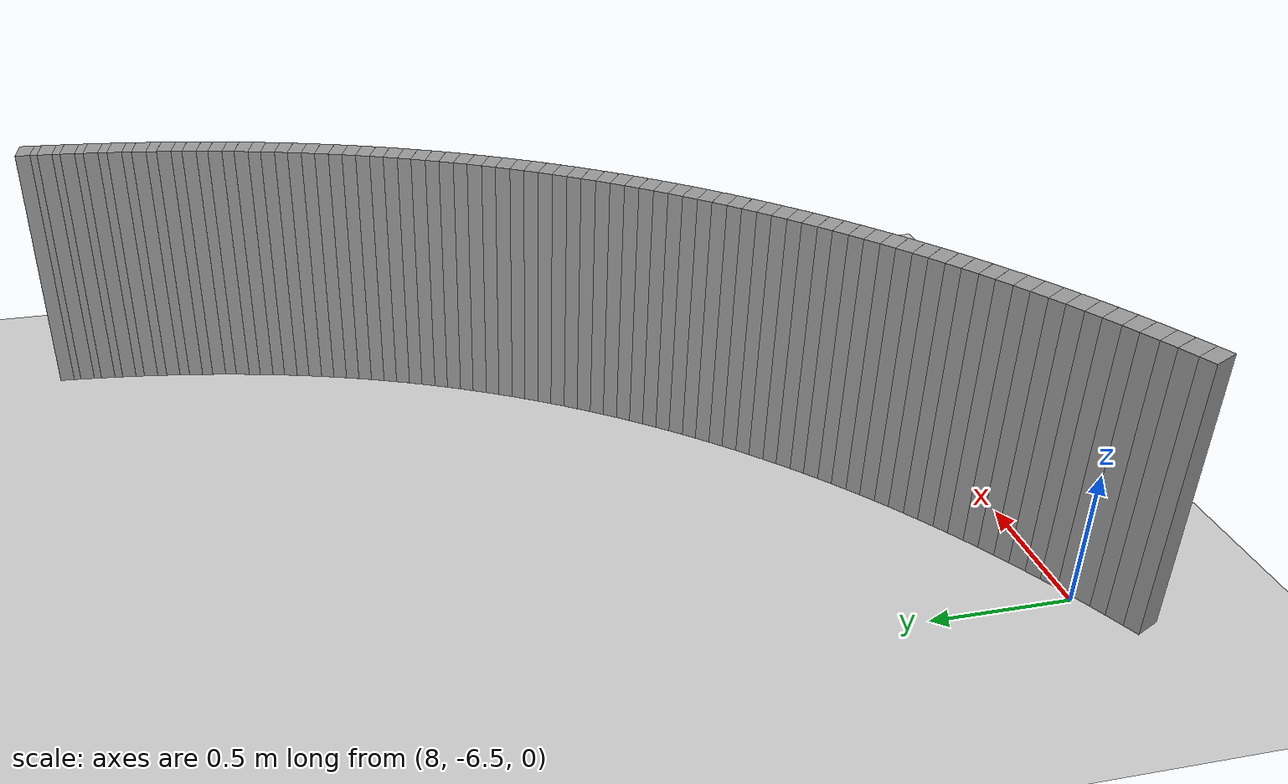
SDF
<sdf version="1.6">
 <world name="default">
  <include><uri>model://ground_plane</uri></include>
  <include><uri>model://sun</uri></include>
  <model name="wall_506_outward">
   <static>true</static>
   <link name="link">
    <collision name="collision">
     <geometry><box><size>0.05527079873616427 0.1 1.0</size></box></geometry>
    </collision>
    <visual name="visual">
     <geometry><box><size>0.05527079873616427 0.1 1.0</size></box></geometry>
     <material>
      <script><uri>file://media/materials/scripts/gazebo.material</uri><name>Gazebo/Gray</name></script>
     </material>
    </visual>
   </link>
   <pose>10.201085446480485 -3.150995703800944 0.5 0 0 -1.6459002783674306</pose>
  </model>
  <model name="wall_507_outward">
   <static>true</static>
   <link name="link">
    <collision name="collision">
     <geometry><box><size>0.026887933569008527 0.1 1.0</size></box></geometry>
    </collision>
    <visual name="visual">
     <geometry><box><size>0.026887933569008527 0.1 1.0</size></box></geometry>
     <material>
      <script><uri>file://media/materials/scripts/gazebo.material</uri><name>Gazebo/Gray</name></script>
     </material>
    </visual>
   </link>
   <pose>10.197913030776308 -3.1919521845375796 0.5 0 0 -1.6526223123829276</pose>
  </model>
  <model name="wall_508_outward">
   <static>true</static>
   <link name="link">
    <collision name="collision">
     <geometry><box><size>0.05551601900319563 0.1 1.0</size></box></geometry>
    </collision>
    <visual name="visual">
     <geometry><box><size>0.05551601900319563 0.1 1.0</size></box></geometry>
     <material>
      <script><uri>file://media/materials/scripts/gazebo.material</uri><name>Gazebo/Gray</name></script>
     </material>
    </visual>
   </link>
   <pose>10.194359486070763 -3.2330004281986193 0.5 0 0 -1.659344346398403</pose>
  </model>
  <model name="wall_509_outward">
   <static>true</static>
   <link name="link">
    <collision name="collision">
     <geometry><box><size>0.029658096209920826 0.1 1.0</size></box></geometry>
    </collision>
    <visual name="visual">
     <geometry><box><size>0.029658096209920826 0.1 1.0</size></box></geometry>
     <material>
      <script><uri>file://media/materials/scripts/gazebo.material</uri><name>Gazebo/Gray</name></script>
     </material>
    </visual>
   </link>
   <pose>10.19048392891742 -3.2754105084022593 0.5 0 0 -1.6667589383883534</pose>
  </model>
  <model name="wall_510_outward">
   <static>true</static>
   <link name="link">
    <collision name="collision">
     <geometry><box><size>0.055665710359898056 0.1 1.0</size></box></geometry>
    </collision>
    <visual name="visual">
     <geometry><box><size>0.055665710359898056 0.1 1.0</size></box></geometry>
     <material>
      <script><uri>file://media/materials/scripts/gazebo.material</uri><name>Gazebo/Gray</name></script>
     </material>
    </visual>
   </link>
   <pose>10.186190917179067 -3.3178555947095316 0.5 0 0 -1.6741735303782905</pose>
  </model>
  <model name="wall_511_outward">
   <static>true</static>
   <link name="link">
    <collision name="collision">
     <geometry><box><size>0.03243474608291261 0.1 1.0</size></box></geometry>
    </collision>
    <visual name="visual">
     <geometry><box><size>0.03243474608291261 0.1 1.0</size></box></geometry>
     <material>
      <script><uri>file://media/materials/scripts/gazebo.material</uri><name>Gazebo/Gray</name></script>
     </material>
    </visual>
   </link>
   <pose>10.181514489844137 -3.361656553088691 0.5 0 0 -1.6822823057604235</pose>
  </model>
  <model name="wall_512_outward">
   <static>true</static>
   <link name="link">
    <collision name="collision">
     <geometry><box><size>0.055723122416963776 0.1 1.0</size></box></geometry>
    </collision>
    <visual name="visual">
     <geometry><box><size>0.055723122416963776 0.1 1.0</size></box></geometry>
     <material>
      <script><uri>file://media/materials/scripts/gazebo.material</uri><name>Gazebo/Gray</name></script>
     </material>
    </visual>
   </link>
   <pose>10.17638606400007 -3.405435794557179 0.5 0 0 -1.6903910811425393</pose>
  </model>
  <model name="wall_513_outward">
   <static>true</static>
   <link name="link">
    <collision name="collision">
     <geometry><box><size>0.03517502913729756 0.1 1.0</size></box></geometry>
    </collision>
    <visual name="visual">
     <geometry><box><size>0.03517502913729756 0.1 1.0</size></box></geometry>
     <material>
      <script><uri>file://media/materials/scripts/gazebo.material</uri><name>Gazebo/Gray</name></script>
     </material>
    </visual>
   </link>
   <pose>10.170810066384345 -3.450541102957221 0.5 0 0 -1.6991849517679</pose>
  </model>
  <model name="wall_514_outward">
   <static>true</static>
   <link name="link">
    <collision name="collision">
     <geometry><box><size>0.055696696315166494 0.1 1.0</size></box></geometry>
    </collision>
    <visual name="visual">
     <geometry><box><size>0.055696696315166494 0.1 1.0</size></box></geometry>
     <material>
      <script><uri>file://media/materials/scripts/gazebo.material</uri><name>Gazebo/Gray</name></script>
     </material>
    </visual>
   </link>
   <pose>10.164749893150073 -3.495570582704342 0.5 0 0 -1.7079788223933168</pose>
  </model>
  <model name="wall_515_outward">
   <static>true</static>
   <link name="link">
    <collision name="collision">
     <geometry><box><size>0.037876962975831534 0.1 1.0</size></box></geometry>
    </collision>
    <visual name="visual">
     <geometry><box><size>0.037876962975831534 0.1 1.0</size></box></geometry>
     <material>
      <script><uri>file://media/materials/scripts/gazebo.material</uri><name>Gazebo/Gray</name></script>
     </material>
    </visual>
   </link>
   <pose>10.158174139176705 -3.5418924954054516 0.5 0 0 -1.717448204655291</pose>
  </model>
  <model name="wall_516_outward">
   <static>true</static>
   <link name="link">
    <collision name="collision">
     <geometry><box><size>0.055601988441618753 0.1 1.0</size></box></geometry>
    </collision>
    <visual name="visual">
     <geometry><box><size>0.055601988441618753 0.1 1.0</size></box></geometry>
     <material>
      <script><uri>file://media/materials/scripts/gazebo.material</uri><name>Gazebo/Gray</name></script>
     </material>
    </visual>
   </link>
   <pose>10.151084003974976 -3.588090562043505 0.5 0 0 -1.7269175869172755</pose>
  </model>
  <model name="wall_517_outward">
   <static>true</static>
   <link name="link">
    <collision name="collision">
     <geometry><box><size>0.04047739348557297 0.1 1.0</size></box></geometry>
    </collision>
    <visual name="visual">
     <geometry><box><size>0.04047739348557297 0.1 1.0</size></box></geometry>
     <material>
      <script><uri>file://media/materials/scripts/gazebo.material</uri><name>Gazebo/Gray</name></script>
     </material>
    </visual>
   </link>
   <pose>10.143412266705255 -3.6355131171942157 0.5 0 0 -1.7370371080022287</pose>
  </model>
  <model name="wall_518_outward">
   <static>true</static>
   <link name="link">
    <collision name="collision">
     <geometry><box><size>0.055454371000564356 0.1 1.0</size></box></geometry>
    </collision>
    <visual name="visual">
     <geometry><box><size>0.055454371000564356 0.1 1.0</size></box></geometry>
     <material>
      <script><uri>file://media/materials/scripts/gazebo.material</uri><name>Gazebo/Gray</name></script>
     </material>
    </visual>
   </link>
   <pose>10.135198579989513 -3.682769902365677 0.5 0 0 -1.7471566290871572</pose>
  </model>
  <model name="wall_519_outward">
   <static>true</static>
   <link name="link">
    <collision name="collision">
     <geometry><box><size>0.04297648535518742 0.1 1.0</size></box></geometry>
    </collision>
    <visual name="visual">
     <geometry><box><size>0.04297648535518742 0.1 1.0</size></box></geometry>
     <material>
      <script><uri>file://media/materials/scripts/gazebo.material</uri><name>Gazebo/Gray</name></script>
     </material>
    </visual>
   </link>
   <pose>10.126336782491684 -3.7311802125900475 0.5 0 0 -1.7579009571466717</pose>
  </model>
  <model name="wall_520_outward">
   <static>true</static>
   <link name="link">
    <collision name="collision">
     <geometry><box><size>0.05527455048617462 0.1 1.0</size></box></geometry>
    </collision>
    <visual name="visual">
     <geometry><box><size>0.05527455048617462 0.1 1.0</size></box></geometry>
     <material>
      <script><uri>file://media/materials/scripts/gazebo.material</uri><name>Gazebo/Gray</name></script>
     </material>
    </visual>
   </link>
   <pose>10.116907248011547 -3.779391537335115 0.5 0 0 -1.7686452852062364</pose>
  </model>
  <model name="wall_521_outward">
   <static>true</static>
   <link name="link">
    <collision name="collision">
     <geometry><box><size>0.045340806498346306 0.1 1.0</size></box></geometry>
    </collision>
    <visual name="visual">
     <geometry><box><size>0.045340806498346306 0.1 1.0</size></box></geometry>
     <material>
      <script><uri>file://media/materials/scripts/gazebo.material</uri><name>Gazebo/Gray</name></script>
     </material>
    </visual>
   </link>
   <pose>10.106767060889704 -3.8286658573675743 0.5 0 0 -1.779980729582098</pose>
  </model>
  <model name="wall_522_outward">
   <static>true</static>
   <link name="link">
    <collision name="collision">
     <geometry><box><size>0.05508164568797529 0.1 1.0</size></box></geometry>
    </collision>
    <visual name="visual">
     <geometry><box><size>0.05508164568797529 0.1 1.0</size></box></geometry>
     <material>
      <script><uri>file://media/materials/scripts/gazebo.material</uri><name>Gazebo/Gray</name></script>
     </material>
    </visual>
   </link>
   <pose>10.096035081662045 -3.8777159503628207 0.5 0 0 -1.791316173958029</pose>
  </model>
  <model name="wall_523_outward">
   <static>true</static>
   <link name="link">
    <collision name="collision">
     <geometry><box><size>0.04750928040422077 0.1 1.0</size></box></geometry>
    </collision>
    <visual name="visual">
     <geometry><box><size>0.04750928040422077 0.1 1.0</size></box></geometry>
     <material>
      <script><uri>file://media/materials/scripts/gazebo.material</uri><name>Gazebo/Gray</name></script>
     </material>
    </visual>
   </link>
   <pose>10.08453992794665 -3.927705886102861 0.5 0 0 -1.8031937733338654</pose>
  </model>
  <model name="wall_524_outward">
   <static>true</static>
   <link name="link">
    <collision name="collision">
     <geometry><box><size>0.05489461279334247 0.1 1.0</size></box></geometry>
    </collision>
    <visual name="visual">
     <geometry><box><size>0.05489461279334247 0.1 1.0</size></box></geometry>
     <material>
      <script><uri>file://media/materials/scripts/gazebo.material</uri><name>Gazebo/Gray</name></script>
     </material>
    </visual>
   </link>
   <pose>10.072430756560195 -3.977454406908517 0.5 0 0 -1.8150713727096794</pose>
  </model>
  <model name="wall_525_outward">
   <static>true</static>
   <link name="link">
    <collision name="collision">
     <geometry><box><size>0.049496896780268286 0.1 1.0</size></box></geometry>
    </collision>
    <visual name="visual">
     <geometry><box><size>0.049496896780268286 0.1 1.0</size></box></geometry>
     <material>
      <script><uri>file://media/materials/scripts/gazebo.material</uri><name>Gazebo/Gray</name></script>
     </material>
    </visual>
   </link>
   <pose>10.05951036584947 -4.028024717423799 0.5 0 0 -1.827445912719646</pose>
  </model>
  <model name="wall_526_outward">
   <static>true</static>
   <link name="link">
    <collision name="collision">
     <geometry><box><size>0.05473016714266876 0.1 1.0</size></box></geometry>
    </collision>
    <visual name="visual">
     <geometry><box><size>0.05473016714266876 0.1 1.0</size></box></geometry>
     <material>
      <script><uri>file://media/materials/scripts/gazebo.material</uri><name>Gazebo/Gray</name></script>
     </material>
    </visual>
   </link>
   <pose>10.045954800124676 -4.078343333729715 0.5 0 0 -1.8398204527296171</pose>
  </model>
  <model name="wall_527_outward">
   <static>true</static>
   <link name="link">
    <collision name="collision">
     <geometry><box><size>0.05128243671680484 0.1 1.0</size></box></geometry>
    </collision>
    <visual name="visual">
     <geometry><box><size>0.05128243671680484 0.1 1.0</size></box></geometry>
     <material>
      <script><uri>file://media/materials/scripts/gazebo.material</uri><name>Gazebo/Gray</name></script>
     </material>
    </visual>
   </link>
   <pose>10.03154986169515 -4.129353631274317 0.5 0 0 -1.8526414131511573</pose>
  </model>
  <model name="wall_528_outward">
   <static>true</static>
   <link name="link">
    <collision name="collision">
     <geometry><box><size>0.05460191090464128 0.1 1.0</size></box></geometry>
    </collision>
    <visual name="visual">
     <geometry><box><size>0.05460191090464128 0.1 1.0</size></box></geometry>
     <material>
      <script><uri>file://media/materials/scripts/gazebo.material</uri><name>Gazebo/Gray</name></script>
     </material>
    </visual>
   </link>
   <pose>10.016489558611289 -4.1801074091789525 0.5 0 0 -1.8654623735726945</pose>
  </model>
  <model name="wall_529_outward">
   <static>true</static>
   <link name="link">
    <collision name="collision">
     <geometry><box><size>0.05286049613451886 0.1 1.0</size></box></geometry>
    </collision>
    <visual name="visual">
     <geometry><box><size>0.05286049613451886 0.1 1.0</size></box></geometry>
     <material>
      <script><uri>file://media/materials/scripts/gazebo.material</uri><name>Gazebo/Gray</name></script>
     </material>
    </visual>
   </link>
   <pose>10.000551371492154 -4.231419107676569 0.5 0 0 -1.8786778822836623</pose>
  </model>
  <model name="wall_530_outward">
   <static>true</static>
   <link name="link">
    <collision name="collision">
     <geometry><box><size>0.05452002000183561 0.1 1.0</size></box></geometry>
    </collision>
    <visual name="visual">
     <geometry><box><size>0.05452002000183561 0.1 1.0</size></box></geometry>
     <material>
      <script><uri>file://media/materials/scripts/gazebo.material</uri><name>Gazebo/Gray</name></script>
     </material>
    </visual>
   </link>
   <pose>9.983938465991475 -4.282473288219872 0.5 0 0 -1.8918933909946523</pose>
  </model>
  <model name="wall_531_outward">
   <static>true</static>
   <link name="link">
    <collision name="collision">
     <geometry><box><size>0.05424265256249421 0.1 1.0</size></box></geometry>
    </collision>
    <visual name="visual">
     <geometry><box><size>0.05424265256249421 0.1 1.0</size></box></geometry>
     <material>
      <script><uri>file://media/materials/scripts/gazebo.material</uri><name>Gazebo/Gray</name></script>
     </material>
    </visual>
   </link>
   <pose>9.966427096555424 -4.333956739094191 0.5 0 0 -1.9054544697849898</pose>
  </model>
  <model name="wall_532_outward">
   <static>true</static>
   <link name="link">
    <collision name="collision">
     <geometry><box><size>0.054491712413298705 0.1 1.0</size></box></geometry>
    </collision>
    <visual name="visual">
     <geometry><box><size>0.054491712413298705 0.1 1.0</size></box></geometry>
     <material>
      <script><uri>file://media/materials/scripts/gazebo.material</uri><name>Gazebo/Gray</name></script>
     </material>
    </visual>
   </link>
   <pose>9.948222245054424 -4.385184056237614 0.5 0 0 -1.9190155485752707</pose>
  </model>
  <model name="wall_533_outward">
   <static>true</static>
   <link name="link">
    <collision name="collision">
     <geometry><box><size>0.055374739986079086 0.1 1.0</size></box></geometry>
    </collision>
    <visual name="visual">
     <geometry><box><size>0.055374739986079086 0.1 1.0</size></box></geometry>
     <material>
      <script><uri>file://media/materials/scripts/gazebo.material</uri><name>Gazebo/Gray</name></script>
     </material>
    </visual>
   </link>
   <pose>9.929118299939713 -4.436687008020684 0.5 0 0 -1.9328596757948417</pose>
  </model>
  <model name="wall_534_outward">
   <static>true</static>
   <link name="link">
    <collision name="collision">
     <geometry><box><size>0.054520546661288055 0.1 1.0</size></box></geometry>
    </collision>
    <visual name="visual">
     <geometry><box><size>0.054520546661288055 0.1 1.0</size></box></geometry>
     <material>
      <script><uri>file://media/materials/scripts/gazebo.material</uri><name>Gazebo/Gray</name></script>
     </material>
    </visual>
   </link>
   <pose>9.909303603042918 -4.487936170334031 0.5 0 0 -1.9467038030143529</pose>
  </model>
  <model name="wall_535_outward">
   <static>true</static>
   <link name="link">
    <collision name="collision">
     <geometry><box><size>0.05635254612016665 0.1 1.0</size></box></geometry>
    </collision>
    <visual name="visual">
     <geometry><box><size>0.05635254612016665 0.1 1.0</size></box></geometry>
     <material>
      <script><uri>file://media/materials/scripts/gazebo.material</uri><name>Gazebo/Gray</name></script>
     </material>
    </visual>
   </link>
   <pose>9.888583708546333 -4.5393535233631725 0.5 0 0 -1.960792405611227</pose>
  </model>
  <model name="wall_536_outward">
   <static>true</static>
   <link name="link">
    <collision name="collision">
     <geometry><box><size>0.05460875804562967 0.1 1.0</size></box></geometry>
    </collision>
    <visual name="visual">
     <geometry><box><size>0.05460875804562967 0.1 1.0</size></box></geometry>
     <material>
      <script><uri>file://media/materials/scripts/gazebo.material</uri><name>Gazebo/Gray</name></script>
     </material>
    </visual>
   </link>
   <pose>9.867136055459973 -4.590519412691004 0.5 0 0 -1.9748810082080988</pose>
  </model>
  <model name="wall_537_outward">
   <static>true</static>
   <link name="link">
    <collision name="collision">
     <geometry><box><size>0.057084450772499434 0.1 1.0</size></box></geometry>
    </collision>
    <visual name="visual">
     <geometry><box><size>0.057084450772499434 0.1 1.0</size></box></geometry>
     <material>
      <script><uri>file://media/materials/scripts/gazebo.material</uri><name>Gazebo/Gray</name></script>
     </material>
    </visual>
   </link>
   <pose>9.844805055727154 -4.641705455176782 0.5 0 0 -1.9891526053658424</pose>
  </model>
  <model name="wall_538_outward">
   <static>true</static>
   <link name="link">
    <collision name="collision">
     <geometry><box><size>0.05475348034628358 0.1 1.0</size></box></geometry>
    </collision>
    <visual name="visual">
     <geometry><box><size>0.05475348034628358 0.1 1.0</size></box></geometry>
     <material>
      <script><uri>file://media/materials/scripts/gazebo.material</uri><name>Gazebo/Gray</name></script>
     </material>
    </visual>
   </link>
   <pose>9.821731601083467 -4.692640583033484 0.5 0 0 -2.003424202523561</pose>
  </model>
  <model name="wall_539_outward">
   <static>true</static>
   <link name="link">
    <collision name="collision">
     <geometry><box><size>0.05763560335712059 0.1 1.0</size></box></geometry>
    </collision>
    <visual name="visual">
     <geometry><box><size>0.05763560335712059 0.1 1.0</size></box></geometry>
     <material>
      <script><uri>file://media/materials/scripts/gazebo.material</uri><name>Gazebo/Gray</name></script>
     </material>
    </visual>
   </link>
   <pose>9.797795867366155 -4.743480954594464 0.5 0 0 -2.017833601996865</pose>
  </model>
  <model name="wall_540_outward">
   <static>true</static>
   <link name="link">
    <collision name="collision">
     <geometry><box><size>0.054952361894302096 0.1 1.0</size></box></geometry>
    </collision>
    <visual name="visual">
     <geometry><box><size>0.054952361894302096 0.1 1.0</size></box></geometry>
     <material>
      <script><uri>file://media/materials/scripts/gazebo.material</uri><name>Gazebo/Gray</name></script>
     </material>
    </visual>
   </link>
   <pose>9.773104448218046 -4.794069311955107 0.5 0 0 -2.0322430014701265</pose>
  </model>
  <model name="wall_541_outward">
   <static>true</static>
   <link name="link">
    <collision name="collision">
     <geometry><box><size>0.05796822305819037 0.1 1.0</size></box></geometry>
    </collision>
    <visual name="visual">
     <geometry><box><size>0.05796822305819037 0.1 1.0</size></box></geometry>
     <material>
      <script><uri>file://media/materials/scripts/gazebo.material</uri><name>Gazebo/Gray</name></script>
     </material>
    </visual>
   </link>
   <pose>9.747591093300763 -4.844434638169152 0.5 0 0 -2.0467355645521224</pose>
  </model>
  <model name="wall_542_outward">
   <static>true</static>
   <link name="link">
    <collision name="collision">
     <geometry><box><size>0.05520078256641861 0.1 1.0</size></box></geometry>
    </collision>
    <visual name="visual">
     <geometry><box><size>0.05520078256641861 0.1 1.0</size></box></geometry>
     <material>
      <script><uri>file://media/materials/scripts/gazebo.material</uri><name>Gazebo/Gray</name></script>
     </material>
    </visual>
   </link>
   <pose>9.721311368420348 -4.894544657126117 0.5 0 0 -2.0612281276341</pose>
  </model>
  <model name="wall_543_outward">
   <static>true</static>
   <link name="link">
    <collision name="collision">
     <geometry><box><size>0.05812875154147817 0.1 1.0</size></box></geometry>
    </collision>
    <visual name="visual">
     <geometry><box><size>0.05812875154147817 0.1 1.0</size></box></geometry>
     <material>
      <script><uri>file://media/materials/scripts/gazebo.material</uri><name>Gazebo/Gray</name></script>
     </material>
    </visual>
   </link>
   <pose>9.694250737187888 -4.944328677091806 0.5 0 0 -2.0757608270635113</pose>
  </model>
  <model name="wall_544_outward">
   <static>true</static>
   <link name="link">
    <collision name="collision">
     <geometry><box><size>0.0554911620704699 0.1 1.0</size></box></geometry>
    </collision>
    <visual name="visual">
     <geometry><box><size>0.0554911620704699 0.1 1.0</size></box></geometry>
     <material>
      <script><uri>file://media/materials/scripts/gazebo.material</uri><name>Gazebo/Gray</name></script>
     </material>
    </visual>
   </link>
   <pose>9.666415959048406 -4.993850652096583 0.5 0 0 -2.090293526492957</pose>
  </model>
  <model name="wall_545_outward">
   <static>true</static>
   <link name="link">
    <collision name="collision">
     <geometry><box><size>0.058100701282349745 0.1 1.0</size></box></geometry>
    </collision>
    <visual name="visual">
     <geometry><box><size>0.058100701282349745 0.1 1.0</size></box></geometry>
     <material>
      <script><uri>file://media/materials/scripts/gazebo.material</uri><name>Gazebo/Gray</name></script>
     </material>
    </visual>
   </link>
   <pose>9.63785520442418 -5.042941293637291 0.5 0 0 -2.104819212617324</pose>
  </model>
  <model name="wall_546_outward">
   <static>true</static>
   <link name="link">
    <collision name="collision">
     <geometry><box><size>0.05581630153309989 0.1 1.0</size></box></geometry>
    </collision>
    <visual name="visual">
     <geometry><box><size>0.05581630153309989 0.1 1.0</size></box></geometry>
     <material>
      <script><uri>file://media/materials/scripts/gazebo.material</uri><name>Gazebo/Gray</name></script>
     </material>
    </visual>
   </link>
   <pose>9.60851588398356 -5.0917603892745085 0.5 0 0 -2.1193448987417596</pose>
  </model>
  <model name="wall_547_outward">
   <static>true</static>
   <link name="link">
    <collision name="collision">
     <geometry><box><size>0.05791622715186232 0.1 1.0</size></box></geometry>
    </collision>
    <visual name="visual">
     <geometry><box><size>0.05791622715186232 0.1 1.0</size></box></geometry>
     <material>
      <script><uri>file://media/materials/scripts/gazebo.material</uri><name>Gazebo/Gray</name></script>
     </material>
    </visual>
   </link>
   <pose>9.578506823656696 -5.140062137513878 0.5 0 0 -2.1338244614831114</pose>
  </model>
  <model name="wall_548_outward">
   <static>true</static>
   <link name="link">
    <collision name="collision">
     <geometry><box><size>0.056166615318627565 0.1 1.0</size></box></geometry>
    </collision>
    <visual name="visual">
     <geometry><box><size>0.056166615318627565 0.1 1.0</size></box></geometry>
     <material>
      <script><uri>file://media/materials/scripts/gazebo.material</uri><name>Gazebo/Gray</name></script>
     </material>
    </visual>
   </link>
   <pose>9.547718717727822 -5.188079277899901 0.5 0 0 -2.1483040242245446</pose>
  </model>
  <model name="wall_549_outward">
   <static>true</static>
   <link name="link">
    <collision name="collision">
     <geometry><box><size>0.057655239686076894 0.1 1.0</size></box></geometry>
    </collision>
    <visual name="visual">
     <geometry><box><size>0.057655239686076894 0.1 1.0</size></box></geometry>
     <material>
      <script><uri>file://media/materials/scripts/gazebo.material</uri><name>Gazebo/Gray</name></script>
     </material>
    </visual>
   </link>
   <pose>9.516302412186075 -5.235531371752025 0.5 0 0 -2.1627183332898867</pose>
  </model>
  <model name="wall_550_outward">
   <static>true</static>
   <link name="link">
    <collision name="collision">
     <geometry><box><size>0.05653370005505878 0.1 1.0</size></box></geometry>
    </collision>
    <visual name="visual">
     <geometry><box><size>0.05653370005505878 0.1 1.0</size></box></geometry>
     <material>
      <script><uri>file://media/materials/scripts/gazebo.material</uri><name>Gazebo/Gray</name></script>
     </material>
    </visual>
   </link>
   <pose>9.48410967127656 -5.282682581904853 0.5 0 0 -2.177132642355254</pose>
  </model>
  <model name="wall_551_outward">
   <static>true</static>
   <link name="link">
    <collision name="collision">
     <geometry><box><size>0.05724671176290875 0.1 1.0</size></box></geometry>
    </collision>
    <visual name="visual">
     <geometry><box><size>0.05724671176290875 0.1 1.0</size></box></geometry>
     <material>
      <script><uri>file://media/materials/scripts/gazebo.material</uri><name>Gazebo/Gray</name></script>
     </material>
    </visual>
   </link>
   <pose>9.451355224925676 -5.329195763289739 0.5 0 0 -2.1914448089038654</pose>
  </model>
  <model name="wall_552_outward">
   <static>true</static>
   <link name="link">
    <collision name="collision">
     <geometry><box><size>0.056907371011607005 0.1 1.0</size></box></geometry>
    </collision>
    <visual name="visual">
     <geometry><box><size>0.056907371011607005 0.1 1.0</size></box></geometry>
     <material>
      <script><uri>file://media/materials/scripts/gazebo.material</uri><name>Gazebo/Gray</name></script>
     </material>
    </visual>
   </link>
   <pose>9.417831760250193 -5.375388827099988 0.5 0 0 -2.2057569754524216</pose>
  </model>
  <model name="wall_553_outward">
   <static>true</static>
   <link name="link">
    <collision name="collision">
     <geometry><box><size>0.05681532569416865 0.1 1.0</size></box></geometry>
    </collision>
    <visual name="visual">
     <geometry><box><size>0.05681532569416865 0.1 1.0</size></box></geometry>
     <material>
      <script><uri>file://media/materials/scripts/gazebo.material</uri><name>Gazebo/Gray</name></script>
     </material>
    </visual>
   </link>
   <pose>9.383781534250877 -5.420925976369079 0.5 0 0 -2.2199612845204224</pose>
  </model>
  <model name="wall_554_outward">
   <static>true</static>
   <link name="link">
    <collision name="collision">
     <geometry><box><size>0.057280478821118114 0.1 1.0</size></box></geometry>
    </collision>
    <visual name="visual">
     <geometry><box><size>0.057280478821118114 0.1 1.0</size></box></geometry>
     <material>
      <script><uri>file://media/materials/scripts/gazebo.material</uri><name>Gazebo/Gray</name></script>
     </material>
    </visual>
   </link>
   <pose>9.348972548065513 -5.466121479255564 0.5 0 0 -2.2341655935883464</pose>
  </model>
  <model name="wall_555_outward">
   <static>true</static>
   <link name="link">
    <collision name="collision">
     <geometry><box><size>0.0564128251925866 0.1 1.0</size></box></geometry>
    </collision>
    <visual name="visual">
     <geometry><box><size>0.0564128251925866 0.1 1.0</size></box></geometry>
     <material>
      <script><uri>file://media/materials/scripts/gazebo.material</uri><name>Gazebo/Gray</name></script>
     </material>
    </visual>
   </link>
   <pose>9.31365608880277 -5.510665040654887 0.5 0 0 -2.2482692674506497</pose>
  </model>
  <model name="wall_556_outward">
   <static>true</static>
   <link name="link">
    <collision name="collision">
     <geometry><box><size>0.05764479598468797 0.1 1.0</size></box></geometry>
    </collision>
    <visual name="visual">
     <geometry><box><size>0.05764479598468797 0.1 1.0</size></box></geometry>
     <material>
      <script><uri>file://media/materials/scripts/gazebo.material</uri><name>Gazebo/Gray</name></script>
     </material>
    </visual>
   </link>
   <pose>9.277594022722244 -5.554842533994294 0.5 0 0 -2.2623729413129303</pose>
  </model>
  <model name="wall_557_outward">
   <static>true</static>
   <link name="link">
    <collision name="collision">
     <geometry><box><size>0.05605520706078222 0.1 1.0</size></box></geometry>
    </collision>
    <visual name="visual">
     <geometry><box><size>0.05605520706078222 0.1 1.0</size></box></geometry>
     <material>
      <script><uri>file://media/materials/scripts/gazebo.material</uri><name>Gazebo/Gray</name></script>
     </material>
    </visual>
   </link>
   <pose>9.241037025738432 -5.59837815149625 0.5 0 0 -2.27638720180592</pose>
  </model>
  <model name="wall_558_outward">
   <static>true</static>
   <link name="link">
    <collision name="collision">
     <geometry><box><size>0.057995976656773064 0.1 1.0</size></box></geometry>
    </collision>
    <visual name="visual">
     <geometry><box><size>0.057995976656773064 0.1 1.0</size></box></geometry>
     <material>
      <script><uri>file://media/materials/scripts/gazebo.material</uri><name>Gazebo/Gray</name></script>
     </material>
    </visual>
   </link>
   <pose>9.203749361608473 -5.6415219646176125 0.5 0 0 -2.290401462298895</pose>
  </model>
  <model name="wall_559_outward">
   <static>true</static>
   <link name="link">
    <collision name="collision">
     <geometry><box><size>0.055800642579368356 0.1 1.0</size></box></geometry>
    </collision>
    <visual name="visual">
     <geometry><box><size>0.055800642579368356 0.1 1.0</size></box></geometry>
     <material>
      <script><uri>file://media/materials/scripts/gazebo.material</uri><name>Gazebo/Gray</name></script>
     </material>
    </visual>
   </link>
   <pose>9.165957456994661 -5.684054682941202 0.5 0 0 -2.304352075449814</pose>
  </model>
  <model name="wall_560_outward">
   <static>true</static>
   <link name="link">
    <collision name="collision">
     <geometry><box><size>0.05833195692220817 0.1 1.0</size></box></geometry>
    </collision>
    <visual name="visual">
     <geometry><box><size>0.05833195692220817 0.1 1.0</size></box></geometry>
     <material>
      <script><uri>file://media/materials/scripts/gazebo.material</uri><name>Gazebo/Gray</name></script>
     </material>
    </visual>
   </link>
   <pose>9.127450387182902 -5.726168929634397 0.5 0 0 -2.3183026886007236</pose>
  </model>
  <model name="wall_561_outward">
   <static>true</static>
   <link name="link">
    <collision name="collision">
     <geometry><box><size>0.055669263678000305 0.1 1.0</size></box></geometry>
    </collision>
    <visual name="visual">
     <geometry><box><size>0.055669263678000305 0.1 1.0</size></box></geometry>
     <material>
      <script><uri>file://media/materials/scripts/gazebo.material</uri><name>Gazebo/Gray</name></script>
     </material>
    </visual>
   </link>
   <pose>9.08841841496438 -5.767707074370203 0.5 0 0 -2.332220453837444</pose>
  </model>
  <model name="wall_562_outward">
   <static>true</static>
   <link name="link">
    <collision name="collision">
     <geometry><box><size>0.058655054406743366 0.1 1.0</size></box></geometry>
    </collision>
    <visual name="visual">
     <geometry><box><size>0.058655054406743366 0.1 1.0</size></box></geometry>
     <material>
      <script><uri>file://media/materials/scripts/gazebo.material</uri><name>Gazebo/Gray</name></script>
     </material>
    </visual>
   </link>
   <pose>9.048685722660924 -5.808800473675619 0.5 0 0 -2.346138219074174</pose>
  </model>
  <model name="wall_563_outward">
   <static>true</static>
   <link name="link">
    <collision name="collision">
     <geometry><box><size>0.055692181426585746 0.1 1.0</size></box></geometry>
    </collision>
    <visual name="visual">
     <geometry><box><size>0.055692181426585746 0.1 1.0</size></box></geometry>
     <material>
      <script><uri>file://media/materials/scripts/gazebo.material</uri><name>Gazebo/Gray</name></script>
     </material>
    </visual>
   </link>
   <pose>9.008391459824036 -5.849359525076139 0.5 0 0 -2.3600617143032103</pose>
  </model>
  <model name="wall_564_outward">
   <static>true</static>
   <link name="link">
    <collision name="collision">
     <geometry><box><size>0.05896973538747424 0.1 1.0</size></box></geometry>
    </collision>
    <visual name="visual">
     <geometry><box><size>0.05896973538747424 0.1 1.0</size></box></geometry>
     <material>
      <script><uri>file://media/materials/scripts/gazebo.material</uri><name>Gazebo/Gray</name></script>
     </material>
    </visual>
   </link>
   <pose>8.967408752640157 -5.889448143620331 0.5 0 0 -2.3739852095322593</pose>
  </model>
  <model name="wall_565_outward">
   <static>true</static>
   <link name="link">
    <collision name="collision">
     <geometry><box><size>0.055825668379136516 0.1 1.0</size></box></geometry>
    </collision>
    <visual name="visual">
     <geometry><box><size>0.055825668379136516 0.1 1.0</size></box></geometry>
     <material>
      <script><uri>file://media/materials/scripts/gazebo.material</uri><name>Gazebo/Gray</name></script>
     </material>
    </visual>
   </link>
   <pose>8.92583828725397 -5.929023796170892 0.5 0 0 -2.387942079742249</pose>
  </model>
  <model name="wall_566_outward">
   <static>true</static>
   <link name="link">
    <collision name="collision">
     <geometry><box><size>0.05928485897774624 0.1 1.0</size></box></geometry>
    </collision>
    <visual name="visual">
     <geometry><box><size>0.05928485897774624 0.1 1.0</size></box></geometry>
     <material>
      <script><uri>file://media/materials/scripts/gazebo.material</uri><name>Gazebo/Gray</name></script>
     </material>
    </visual>
   </link>
   <pose>8.88358824738258 -5.968105522553086 0.5 0 0 -2.401898949952244</pose>
  </model>
  <model name="wall_567_outward">
   <static>true</static>
   <link name="link">
    <collision name="collision">
     <geometry><box><size>0.05612605154947506 0.1 1.0</size></box></geometry>
    </collision>
    <visual name="visual">
     <geometry><box><size>0.05612605154947506 0.1 1.0</size></box></geometry>
     <material>
      <script><uri>file://media/materials/scripts/gazebo.material</uri><name>Gazebo/Gray</name></script>
     </material>
    </visual>
   </link>
   <pose>8.840699284673583 -6.006709831356817 0.5 0 0 -2.415930923308953</pose>
  </model>
  <model name="wall_568_outward">
   <static>true</static>
   <link name="link">
    <collision name="collision">
     <geometry><box><size>0.05961282423848981 0.1 1.0</size></box></geometry>
    </collision>
    <visual name="visual">
     <geometry><box><size>0.05961282423848981 0.1 1.0</size></box></geometry>
     <material>
      <script><uri>file://media/materials/scripts/gazebo.material</uri><name>Gazebo/Gray</name></script>
     </material>
    </visual>
   </link>
   <pose>8.79713409288565 -6.0447989533453965 0.5 0 0 -2.429962896665705</pose>
  </model>
  <model name="wall_569_outward">
   <static>true</static>
   <link name="link">
    <collision name="collision">
     <geometry><box><size>0.05647526304979657 0.1 1.0</size></box></geometry>
    </collision>
    <visual name="visual">
     <geometry><box><size>0.05647526304979657 0.1 1.0</size></box></geometry>
     <material>
      <script><uri>file://media/materials/scripts/gazebo.material</uri><name>Gazebo/Gray</name></script>
     </material>
    </visual>
   </link>
   <pose>8.75291918820303 -6.082401950836314 0.5 0 0 -2.444082181546576</pose>
  </model>
  <model name="wall_570_outward">
   <static>true</static>
   <link name="link">
    <collision name="collision">
     <geometry><box><size>0.05996553304084571 0.1 1.0</size></box></geometry>
    </collision>
    <visual name="visual">
     <geometry><box><size>0.05996553304084571 0.1 1.0</size></box></geometry>
     <material>
      <script><uri>file://media/materials/scripts/gazebo.material</uri><name>Gazebo/Gray</name></script>
     </material>
    </visual>
   </link>
   <pose>8.708026922414017 -6.11947121629953 0.5 0 0 -2.458201466427504</pose>
  </model>
  <model name="wall_571_outward">
   <static>true</static>
   <link name="link">
    <collision name="collision">
     <geometry><box><size>0.05686228780324371 0.1 1.0</size></box></geometry>
    </collision>
    <visual name="visual">
     <geometry><box><size>0.05686228780324371 0.1 1.0</size></box></geometry>
     <material>
      <script><uri>file://media/materials/scripts/gazebo.material</uri><name>Gazebo/Gray</name></script>
     </material>
    </visual>
   </link>
   <pose>8.662477706723283 -6.156040077479182 0.5 0 0 -2.47241751720822</pose>
  </model>
  <model name="wall_572_outward">
   <static>true</static>
   <link name="link">
    <collision name="collision">
     <geometry><box><size>0.060359374248224386 0.1 1.0</size></box></geometry>
    </collision>
    <visual name="visual">
     <geometry><box><size>0.060359374248224386 0.1 1.0</size></box></geometry>
     <material>
      <script><uri>file://media/materials/scripts/gazebo.material</uri><name>Gazebo/Gray</name></script>
     </material>
    </visual>
   </link>
   <pose>8.616243513976709 -6.192060287505927 0.5 0 0 -2.4866335679889207</pose>
  </model>
  <model name="wall_573_outward">
   <static>true</static>
   <link name="link">
    <collision name="collision">
     <geometry><box><size>0.057260968676020145 0.1 1.0</size></box></geometry>
    </collision>
    <visual name="visual">
     <geometry><box><size>0.057260968676020145 0.1 1.0</size></box></geometry>
     <material>
      <script><uri>file://media/materials/scripts/gazebo.material</uri><name>Gazebo/Gray</name></script>
     </material>
    </visual>
   </link>
   <pose>8.5693554382615 -6.227556309054165 0.5 0 0 -2.50094929913095</pose>
  </model>
  <model name="wall_574_outward">
   <static>true</static>
   <link name="link">
    <collision name="collision">
     <geometry><box><size>0.06080832952674273 0.1 1.0</size></box></geometry>
    </collision>
    <visual name="visual">
     <geometry><box><size>0.06080832952674273 0.1 1.0</size></box></geometry>
     <material>
      <script><uri>file://media/materials/scripts/gazebo.material</uri><name>Gazebo/Gray</name></script>
     </material>
    </visual>
   </link>
   <pose>8.521769036085168 -6.262491187441695 0.5 0 0 -2.5152650302729778</pose>
  </model>
  <model name="wall_575_outward">
   <static>true</static>
   <link name="link">
    <collision name="collision">
     <geometry><box><size>0.05753723109077043 0.1 1.0</size></box></geometry>
    </collision>
    <visual name="visual">
     <geometry><box><size>0.05753723109077043 0.1 1.0</size></box></geometry>
     <material>
      <script><uri>file://media/materials/scripts/gazebo.material</uri><name>Gazebo/Gray</name></script>
     </material>
    </visual>
   </link>
   <pose>8.473587943731289 -6.296839684933538 0.5 0 0 -2.529649834130659</pose>
  </model>
  <model name="wall_576_outward">
   <static>true</static>
   <link name="link">
    <collision name="collision">
     <geometry><box><size>0.06132617296720113 0.1 1.0</size></box></geometry>
    </collision>
    <visual name="visual">
     <geometry><box><size>0.06132617296720113 0.1 1.0</size></box></geometry>
     <material>
      <script><uri>file://media/materials/scripts/gazebo.material</uri><name>Gazebo/Gray</name></script>
     </material>
    </visual>
   </link>
   <pose>8.424690326765589 -6.330617898781035 0.5 0 0 -2.54403463798835</pose>
  </model>
  <model name="wall_577_outward">
   <static>true</static>
   <link name="link">
    <collision name="collision">
     <geometry><box><size>0.05768584895082665 0.1 1.0</size></box></geometry>
    </collision>
    <visual name="visual">
     <geometry><box><size>0.05768584895082665 0.1 1.0</size></box></geometry>
     <material>
      <script><uri>file://media/materials/scripts/gazebo.material</uri><name>Gazebo/Gray</name></script>
     </material>
    </visual>
   </link>
   <pose>8.37526444508944 -6.363751923774279 0.5 0 0 -2.5584566001653677</pose>
  </model>
  <model name="wall_578_outward">
   <static>true</static>
   <link name="link">
    <collision name="collision">
     <geometry><box><size>0.061923042280634805 0.1 1.0</size></box></geometry>
    </collision>
    <visual name="visual">
     <geometry><box><size>0.061923042280634805 0.1 1.0</size></box></geometry>
     <material>
      <script><uri>file://media/materials/scripts/gazebo.material</uri><name>Gazebo/Gray</name></script>
     </material>
    </visual>
   </link>
   <pose>8.32510010696371 -6.396308415553327 0.5 0 0 -2.572878562342391</pose>
  </model>
  <model name="wall_579_outward">
   <static>true</static>
   <link name="link">
    <collision name="collision">
     <geometry><box><size>0.05765663932106339 0.1 1.0</size></box></geometry>
    </collision>
    <visual name="visual">
     <geometry><box><size>0.05765663932106339 0.1 1.0</size></box></geometry>
     <material>
      <script><uri>file://media/materials/scripts/gazebo.material</uri><name>Gazebo/Gray</name></script>
     </material>
    </visual>
   </link>
   <pose>8.274500271130659 -6.42815643307128 0.5 0 0 -2.5872932213528776</pose>
  </model>
  <model name="wall_580_outward">
   <static>true</static>
   <link name="link">
    <collision name="collision">
     <geometry><box><size>0.06260789108635947 0.1 1.0</size></box></geometry>
    </collision>
    <visual name="visual">
     <geometry><box><size>0.06260789108635947 0.1 1.0</size></box></geometry>
     <material>
      <script><uri>file://media/materials/scripts/gazebo.material</uri><name>Gazebo/Gray</name></script>
     </material>
    </visual>
   </link>
   <pose>8.223136913133917 -6.459421545671427 0.5 0 0 -2.6017078803633384</pose>
  </model>
  <model name="wall_581_outward">
   <static>true</static>
   <link name="link">
    <collision name="collision">
     <geometry><box><size>0.057452018811851684 0.1 1.0</size></box></geometry>
    </collision>
    <visual name="visual">
     <geometry><box><size>0.057452018811851684 0.1 1.0</size></box></geometry>
     <material>
      <script><uri>file://media/materials/scripts/gazebo.material</uri><name>Gazebo/Gray</name></script>
     </material>
    </visual>
   </link>
   <pose>8.171435597867683 -6.489923741860638 0.5 0 0 -2.616071378950307</pose>
  </model>
  <model name="wall_582_outward">
   <static>true</static>
   <link name="link">
    <collision name="collision">
     <geometry><box><size>0.0633858612823831 0.1 1.0</size></box></geometry>
    </collision>
    <visual name="visual">
     <geometry><box><size>0.0633858612823831 0.1 1.0</size></box></geometry>
     <material>
      <script><uri>file://media/materials/scripts/gazebo.material</uri><name>Gazebo/Gray</name></script>
     </material>
    </visual>
   </link>
   <pose>8.118943903020106 -6.519838328012061 0.5 0 0 -2.630434877537312</pose>
  </model>
  <model name="wall_583_outward">
   <static>true</static>
   <link name="link">
    <collision name="collision">
     <geometry><box><size>0.057058855791011186 0.1 1.0</size></box></geometry>
    </collision>
    <visual name="visual">
     <geometry><box><size>0.057058855791011186 0.1 1.0</size></box></geometry>
     <material>
      <script><uri>file://media/materials/scripts/gazebo.material</uri><name>Gazebo/Gray</name></script>
     </material>
    </visual>
   </link>
   <pose>8.066222693278949 -6.548941979280219 0.5 0 0 -2.644700075298286</pose>
  </model>
  <model name="wall_584_outward">
   <static>true</static>
   <link name="link">
    <collision name="collision">
     <geometry><box><size>0.06425707454622633 0.1 1.0</size></box></geometry>
    </collision>
    <visual name="visual">
     <geometry><box><size>0.06425707454622633 0.1 1.0</size></box></geometry>
     <material>
      <script><uri>file://media/materials/scripts/gazebo.material</uri><name>Gazebo/Gray</name></script>
     </material>
    </visual>
   </link>
   <pose>8.012684612767533 -6.577452962262458 0.5 0 0 -2.6589652730592346</pose>
  </model>
  <model name="wall_585_outward">
   <static>true</static>
   <link name="link">
    <collision name="collision">
     <geometry><box><size>0.0564718829327714 0.1 1.0</size></box></geometry>
    </collision>
    <visual name="visual">
     <geometry><box><size>0.0564718829327714 0.1 1.0</size></box></geometry>
     <material>
      <script><uri>file://media/materials/scripts/gazebo.material</uri><name>Gazebo/Gray</name></script>
     </material>
    </visual>
   </link>
   <pose>7.959032533043568 -6.6051141952318915 0.5 0 0 -2.673083712826653</pose>
  </model>
  <model name="wall_586_outward">
   <static>true</static>
   <link name="link">
    <collision name="collision">
     <geometry><box><size>0.06521942870258114 0.1 1.0</size></box></geometry>
    </collision>
    <visual name="visual">
     <geometry><box><size>0.06521942870258114 0.1 1.0</size></box></geometry>
     <material>
      <script><uri>file://media/materials/scripts/gazebo.material</uri><name>Gazebo/Gray</name></script>
     </material>
    </visual>
   </link>
   <pose>7.904538459189368 -6.632177199741857 0.5 0 0 -2.6872021525940837</pose>
  </model>
  <model name="wall_587_outward">
   <static>true</static>
   <link name="link">
    <collision name="collision"><geometry><box><size>0.055778791864727 0.1 1.0</size></box></geometry></collision>
    <visual name="visual">
     <geometry><box><size>0.055778791864727 0.1 1.0</size></box></geometry>
     <material>
      <script><uri>file://media/materials/scripts/gazebo.material</uri><name>Gazebo/Gray</name></script>
     </material>
    </visual>
   </link>
   <pose>7.850010010074758 -6.658380514875088 0.5 0 0 -2.7011473025349186</pose>
  </model>
 </world>
</sdf>
